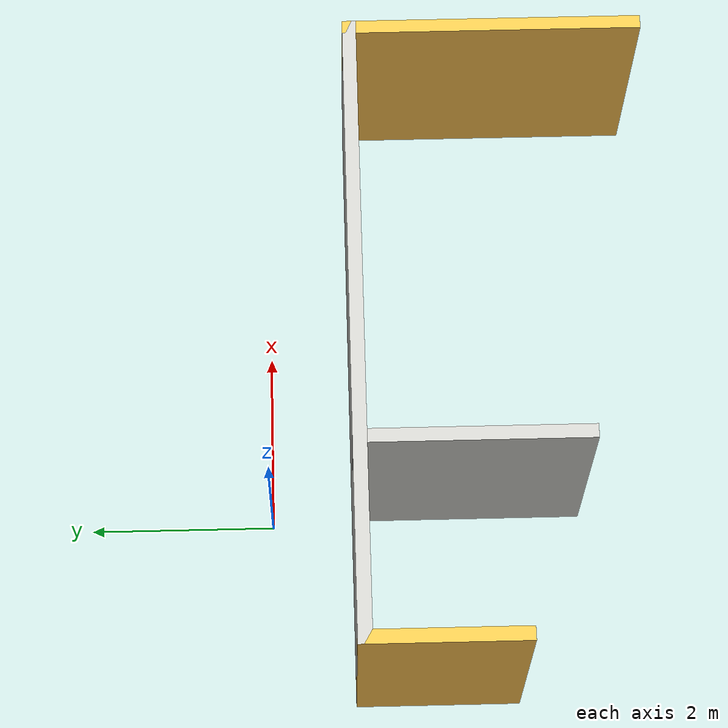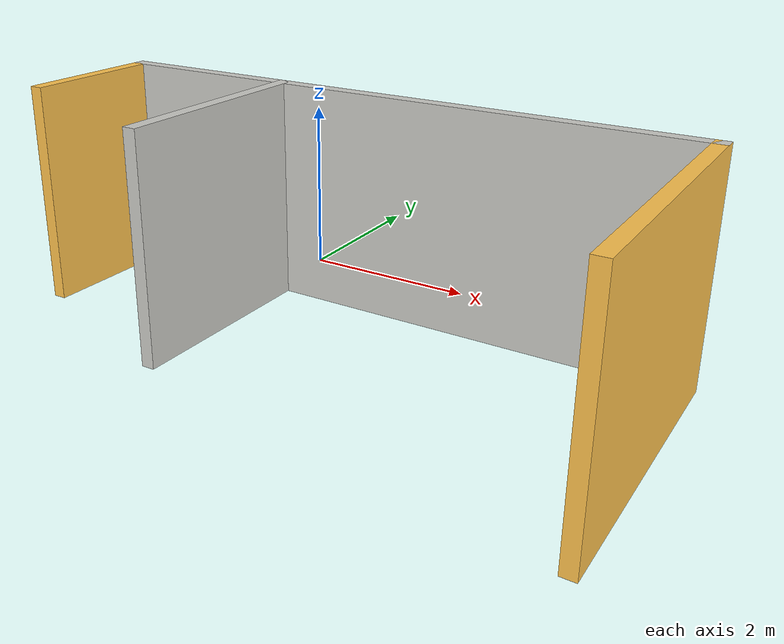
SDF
<?xml version='1.0'?>
<sdf version='1.7'>
  <model name='wall'>
    <pose>1.465 -2.0575 0 0 -0 0</pose>
    <link name='Wall_0'>
      <collision name='Wall_0_Collision'>
        <geometry>
          <box>
            <size>1.75 0.15 2.5</size>
          </box>
        </geometry>
        <pose>0 0 1.25 0 -0 0</pose>
      </collision>
      <visual name='Wall_0_Visual'>
        <pose>0 0 1.25 0 -0 0</pose>
        <geometry>
          <box>
            <size>1.75 0.15 2.5</size>
          </box>
        </geometry>
        <material>
          <script>
            <uri>file://media/materials/scripts/gazebo.material</uri>
            <name>Gazebo/Grey</name>
          </script>
          <ambient>1 0.764706 0.305882 1</ambient>
        </material>
        <meta>
          <layer>0</layer>
        </meta>
      </visual>
      <pose>-3.425 0.3175 0 0 -0 1.5708</pose>
    </link>
    <link name='Wall_4'>
      <collision name='Wall_4_Collision'>
        <geometry>
          <box>
            <size>2.5 0.15 2.5</size>
          </box>
        </geometry>
        <pose>0 0 1.25 0 -0 0</pose>
      </collision>
      <visual name='Wall_4_Visual'>
        <pose>0 0 1.25 0 -0 0</pose>
        <geometry>
          <box>
            <size>2.5 0.15 2.5</size>
          </box>
        </geometry>
        <material>
          <script>
            <uri>file://media/materials/scripts/gazebo.material</uri>
            <name>Gazebo/CeilingTiled</name>
          </script>
          <ambient>1 0.764706 0.305882 1</ambient>
        </material>
        <meta>
          <layer>0</layer>
        </meta>
      </visual>
      <pose>-1.325 -0.0575 0 0 -0 -1.5708</pose>
    </link>
    <link name='Wall_7'>
      <collision name='Wall_7_Collision'>
        <geometry>
          <box>
            <size>7 0.15 2.5</size>
          </box>
        </geometry>
        <pose>0 0 1.25 0 -0 0</pose>
      </collision>
      <visual name='Wall_7_Visual'>
        <pose>0 0 1.25 0 -0 0</pose>
        <geometry>
          <box>
            <size>7 0.15 2.5</size>
          </box>
        </geometry>
        <material>
          <script>
            <uri>file://media/materials/scripts/gazebo.material</uri>
            <name>Gazebo/CeilingTiled</name>
          </script>
          <ambient>1 0.764706 0.305882 1</ambient>
        </material>
        <meta>
          <layer>0</layer>
        </meta>
      </visual>
      <pose>0 1.1175 0 0 -0 0</pose>
    </link>
    <link name='Wall_8'>
      <collision name='Wall_8_Collision'>
        <geometry>
          <box>
            <size>3.25 0.15 2.5</size>
          </box>
        </geometry>
        <pose>0 0 1.25 0 -0 0</pose>
      </collision>
      <visual name='Wall_8_Visual'>
        <pose>0 0 1.25 0 -0 0</pose>
        <geometry>
          <box>
            <size>3.25 0.15 2.5</size>
          </box>
        </geometry>
        <material>
          <script>
            <uri>file://media/materials/scripts/gazebo.material</uri>
            <name>Gazebo/Grey</name>
          </script>
          <ambient>1 0.764706 0.305882 1</ambient>
        </material>
        <meta>
          <layer>0</layer>
        </meta>
      </visual>
      <pose>3.425 -0.4325 0 0 -0 -1.5708</pose>
    </link>
    <static>1</static>
  </model>
</sdf>
